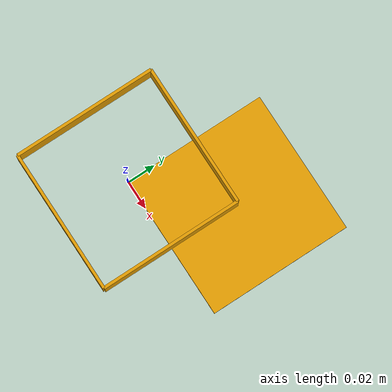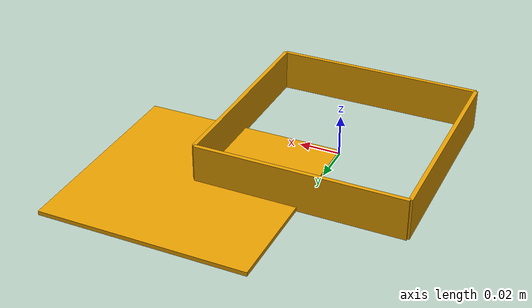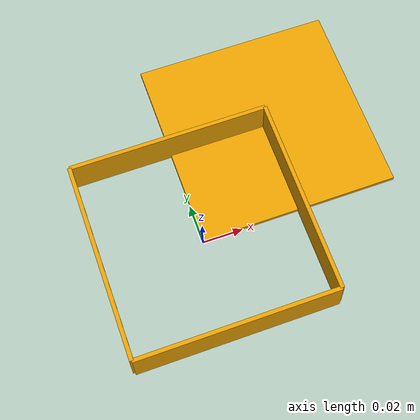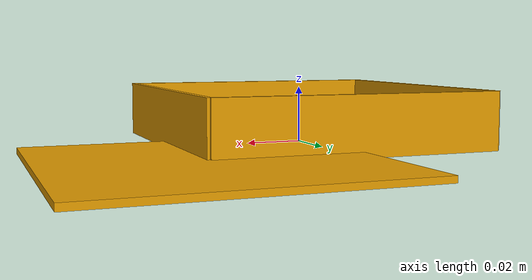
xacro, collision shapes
<?xml version="1.0"?>

<robot xmlns:xacro="http://www.ros.org/wiki/xacro">
    <xacro:arg name="id" default="1" />
    <xacro:arg name="dim" default="0.05" />
    <xacro:arg name="m" default="0.05" />
    <xacro:arg name="l" default="0.1" />
    <xacro:arg name="h" default="0.02" />
    <xacro:arg name="width" default="0.002" />

    <xacro:include filename="$(find robotics_challenges)/urdf/box_marker.xacro" />
    <link name="my_box$(arg id)">
        <basket id="$(arg id)" dim="$(arg dim)" m="$(arg m)" l="$(arg l)" h="$(arg h)" width="$(arg width)"/>
    </link>
    <gazebo reference="my_box$(arg id)">
    <mu1>100.0</mu1>
    <mu2>100.0</mu2>
    <minDepth>0.003</minDepth>
    <maxVel>0</maxVel>
    </gazebo>
</robot>

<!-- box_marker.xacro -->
<robot xmlns:xacro="http://www.ros.org/wiki/xacro">

    <xacro:macro name="basket" params="id dim m l h width">
   <inertial>
      <origin xyz="0 0 0" />
      <mass value="${m}" />
      <inertia  ixx="${m*m/12.0}" ixy="0.0"  ixz="0.0"  iyy="${m*m/12.0}"  iyz="0.0"  izz="${m*m/12.0}" />
    </inertial>
    <visual>
        <origin xyz="${-dim/2.0} 0 ${width}" rpy="0 1.5708 0"/>
      <geometry>
        <mesh filename="package://robotics_challenges/urdf/marker${id*10+7}/meshes/Marker${id*10+7}.dae" scale="${2.0*dim} ${2.0*dim} ${2.0*dim}"/>
      </geometry>
    </visual>

    <visual>
      <origin xyz="0 0 ${width/2}" rpy="0 0 0"/>
      <geometry>
        <box size="${l} ${l} ${width}" />
      </geometry>
    </visual>

    <visual>
      <origin xyz="0 ${l/2} ${h/2.0}" rpy="0 0 0"/>
      <geometry>
        <box size="${l} ${width} ${h}" />
      </geometry>
    </visual>
    <visual>
      <origin xyz="0 ${-l/2} ${h/2.0}" rpy="0 0 0"/>
      <geometry>
        <box size="${l} ${width} ${h}" />
      </geometry>
    </visual>
    <visual>
      <origin xyz="${l/2} 0 ${h/2.0}" rpy="0 0 0"/>
      <geometry>
        <box size="${width} ${l} ${h}" />
      </geometry>
    </visual>
    <visual>
      <origin xyz="${-l/2} 0 ${h/2.0}" rpy="0 0 0"/>
      <geometry>
        <box size="${width} ${l} ${h}" />
      </geometry>
    </visual>

    <collision>
      <origin xyz="${l/2} ${l/2} ${width/2}" rpy="0 0 0"/>
      <geometry>
        <box size="${l} ${l} ${width}" />
      </geometry>
    </collision>
    <collision>
      <origin xyz="0 ${l/2} ${h/2.0}" rpy="0 0 0"/>
      <geometry>
        <box size="${l} ${width} ${h}" />
      </geometry>
    </collision>
    <collision>
      <origin xyz="0 ${-l/2} ${h/2.0}" rpy="0 0 0"/>
      <geometry>
        <box size="${l} ${width} ${h}" />
      </geometry>
    </collision>
    <collision>
      <origin xyz="${l/2} 0 ${h/2.0}" rpy="0 0 0"/>
      <geometry>
        <box size="${width} ${l} ${h}" />
      </geometry>
    </collision>
    <collision>
      <origin xyz="${-l/2} 0 ${h/2.0}" rpy="0 0 0"/>
      <geometry>
        <box size="${width} ${l} ${h}" />
      </geometry>
    </collision>

</xacro:macro>
</robot>
